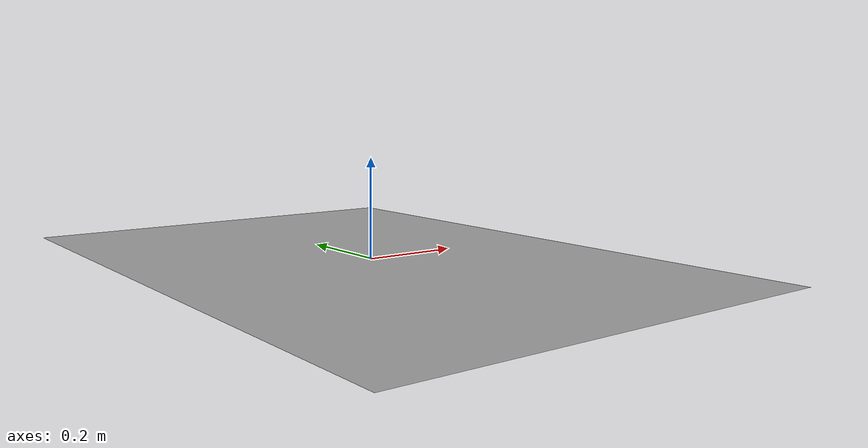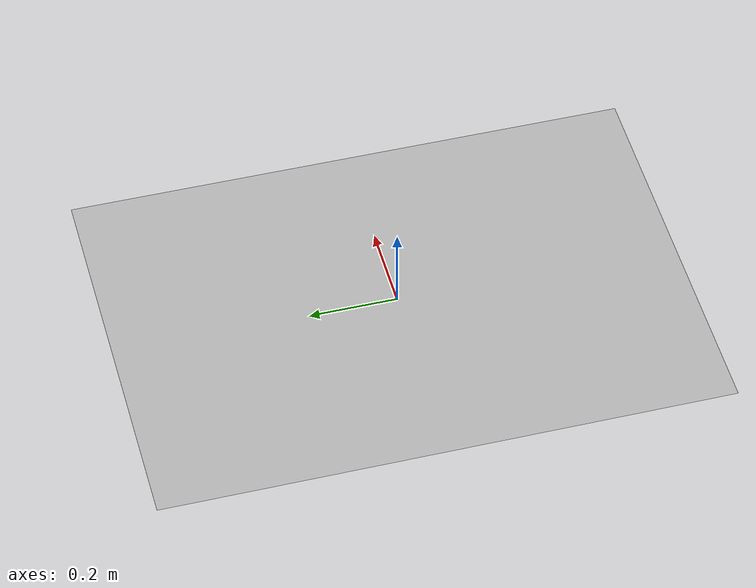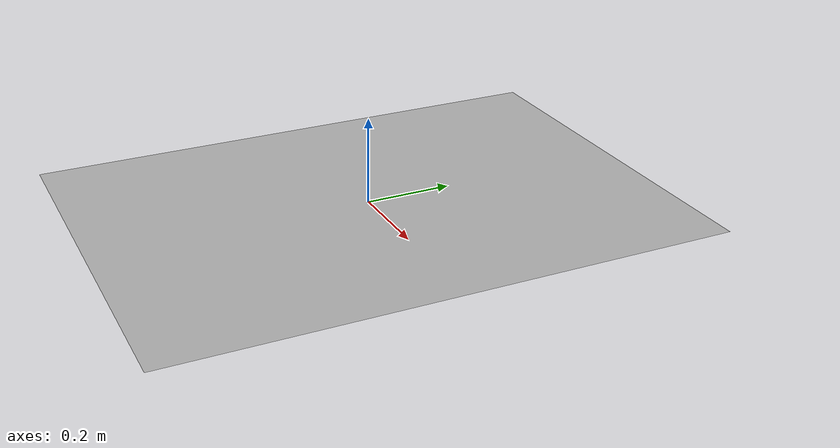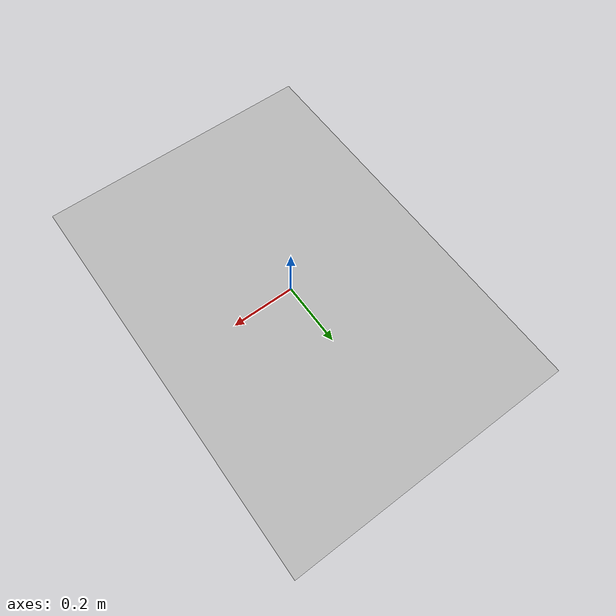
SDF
<?xml version="1.0"?>
<sdf version="1.4">
    <model name="aruco_board">
      <pose>0 0 0  0 0 0</pose>
      <static>true</static>
      <link name="body">
        <visual name="visual">
          <geometry>
            <mesh><uri>model://models/aruco_board/aruco_board.dae</uri></mesh>
          </geometry>
          <material>
            <script>
              <name>__default__</name>
            </script>
          </material>
          <cast_shadows>0</cast_shadows>
        </visual>
      </link>
      <static>1</static>
    </model>
</sdf>
